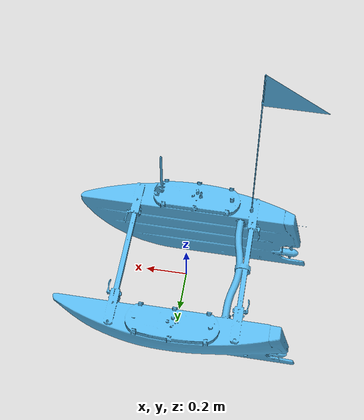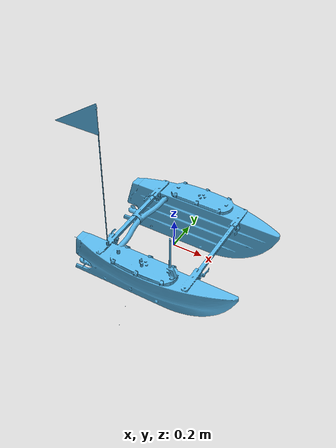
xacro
<?xml version="1.0"?>
<robot xmlns:xacro="http://ros.org/wiki/xacro" name="blueboat">
  <xacro:arg name="namespace" default="blueboat"/>
  <xacro:property name="namespace" value="$(arg namespace)" scope="global" />

  <!-- Dimensions (meters) -->
  <xacro:property name="L" value="1.20"/>  <!-- length (x) -->
  <xacro:property name="W" value="0.93"/>  <!-- width  (y) -->
  <xacro:property name="H" value="0.46"/>  <!-- height (z) -->

  <!-- Masses -->
  <xacro:property name="m_hull" value="15.0"/>        <!-- boat+batteries -->
  <xacro:property name="m_payload" value="9.07185"/>  <!-- 20 lb sensor suite -->

  <!-- Payload placement + rough size (edit these to match your real mounting) -->
  <xacro:property name="payload_xyz" value="0 0 0.3"/>
  <xacro:property name="pL" value="0.62"/>  <!-- payload box length -->
  <xacro:property name="pW" value="0.40"/>  <!-- payload box width  -->
  <xacro:property name="pH" value="0.43"/>  <!-- payload box height -->

  <xacro:macro name="main_collisions" params="prefix reflect:=1">
    <!-- Main float -->
    <collision name="${prefix}_float">
      <origin xyz="0 ${0.33*reflect} -0.05" rpy="${0*reflect} 0 0" />
      <geometry>
        <box size="1.2 0.2 0.4" />
      </geometry>
    </collision>
  </xacro:macro>

  <link name="${namespace}/base_link">
    </link>

    <joint name="${namespace}/dummy_joint" type = "fixed">
      <parent link="${namespace}/base_link"/>
      <child link="${namespace}/dummy_link"/>
    </joint>

  <!-- BlueBoat main body -->
  <link name="${namespace}/dummy_link">
    <!-- Visual -->
    <visual>
      <origin xyz="-0.6 -0.6 -0.25" rpy="1.57 0 1.57"/>
      <geometry>
        <mesh filename="package://blueboat/meshes/base/blueboat/mesh/blueboat.dae"
              scale="0.001 0.001 0.001"/>
      </geometry>
    </visual>

    <xacro:main_collisions prefix="left"  reflect="1"/>
    <xacro:main_collisions prefix="right" reflect="-1"/>

    <collision name="top_base">
      <origin xyz="0 0 0.13" rpy="0 0 0" />
      <geometry>
        <box size="1.2 0.925 0.05" />
      </geometry>
    </collision>

    <inertial>
      <origin xyz="0 0 0" rpy="0 0 0"/>
      <mass value="${m_hull}"/>
      <!-- Ixx = m/12 (W^2 + H^2), Iyy = m/12 (L^2 + H^2), Izz = m/12 (L^2 + W^2) -->
      <inertia ixx="1.345625" ixy="0.0" ixz="0.0" iyy="2.064500" iyz="0.0" izz="2.881125"/>
    </inertial>
  </link>

  <joint name="${namespace}/payload_joint" type="fixed">
    <parent link="${namespace}/dummy_link"/>
    <child link="${namespace}/payload_link"/>
    <origin xyz="${payload_xyz}" rpy="0 0 0"/>
  </joint>

  <link name="${namespace}/payload_link">
    <collision name="payload_collision">
      <origin xyz="0 0 0" rpy="0 0 0"/>
      <geometry>
        <box size="${pL} ${pW} ${pH}"/>
      </geometry>
    </collision>

    <inertial>
      <origin xyz="0 0 -0.13" rpy="0 0 0"/>
      <mass value="${m_payload}"/>
      <inertia ixx="0.261" ixy="0" ixz="0" iyy="0.431" iyz="0" izz="0.412"/>
    </inertial>
  </link>
</robot>
